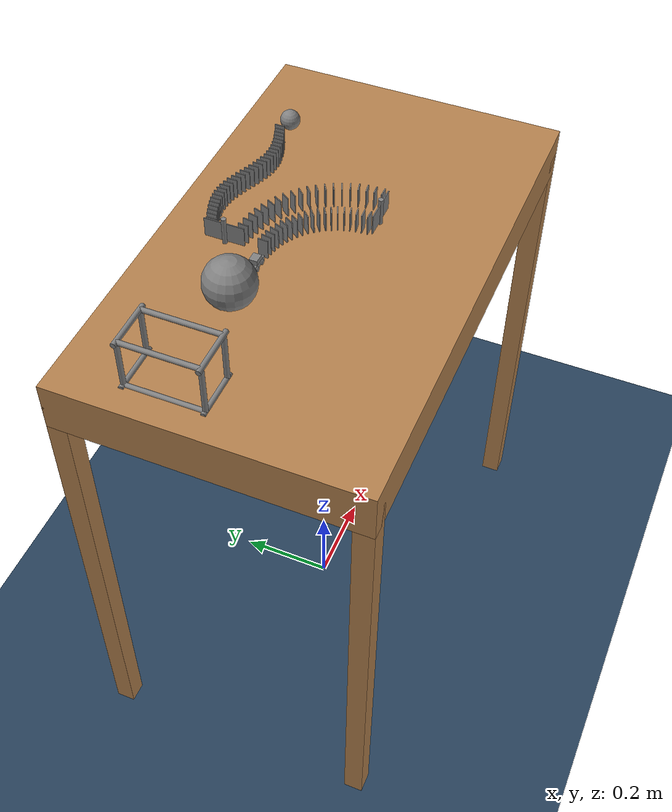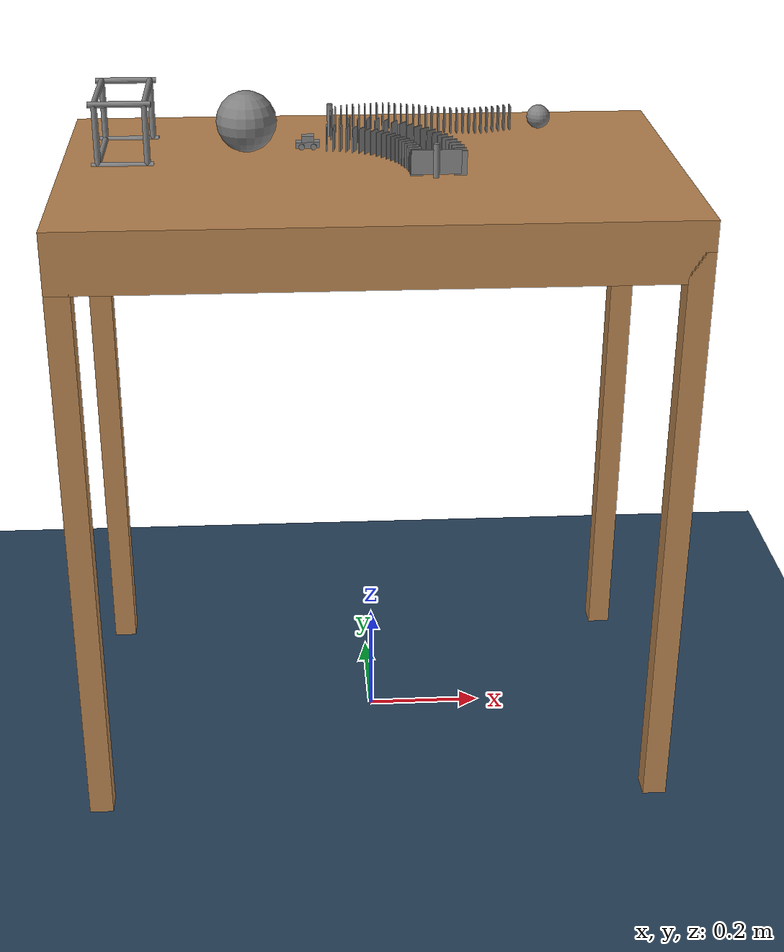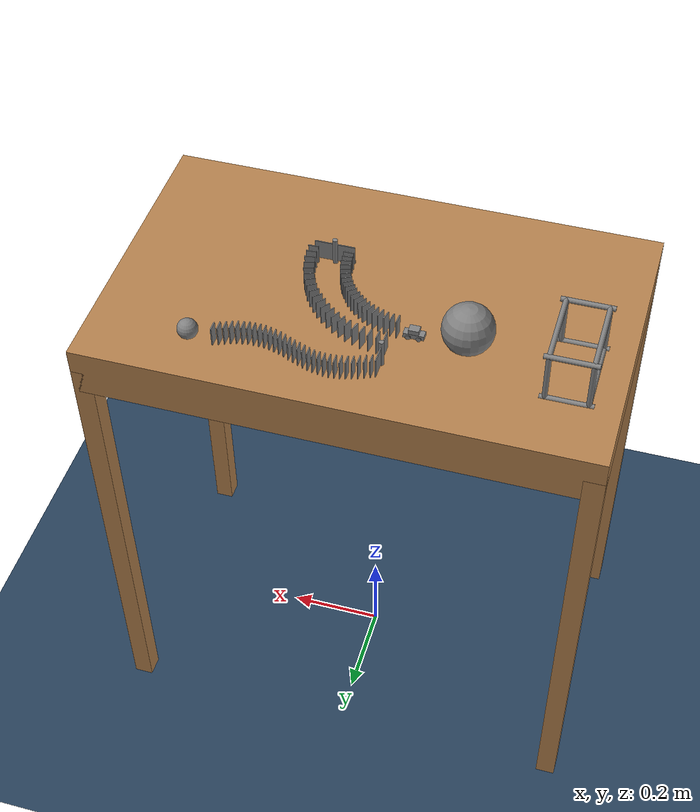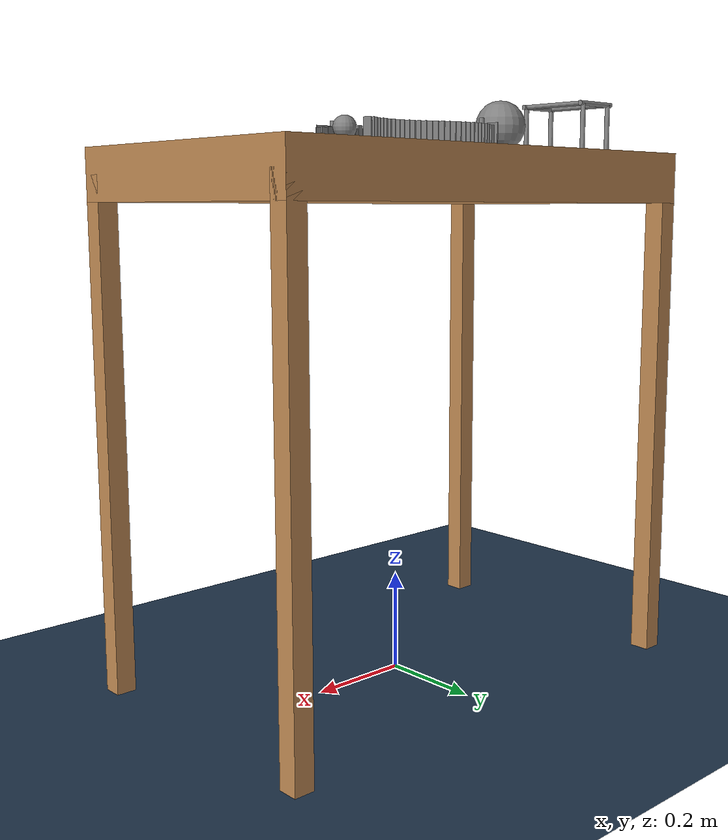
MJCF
<mujoco>
  <compiler meshdir="assets/meshes" texturedir="assets/textures" autolimits="true"/>

  <asset>
    <!-- floor  -->
    <texture  name="grid" type="2d" builtin="checker" width="512" height="512" rgb1=".1 .2 .3" rgb2=".2 .3 .4"/>
    <material name="grid" texture="grid" texrepeat="1 1" texuniform="true" reflectance=".2"/>

        <!-- wood  -->
        <texture  name="wood" type="2d" file="wood.png"/>
        <material name="wood" texture="wood" specular="0" shininess="0.25"/>

  </asset>

  <default>

        <!-- Table::Leg -->
        <default class="table_leg">
          <geom   type="box" size="0.02 0.02 0.5" material="wood"  />
        </default>

        <!-- Domino -->
        <default class="domino">
          <geom   type="box" size="0.001 0.01 0.02"  />
        </default>

        <!-- RevolvingDoor -->
        <default class="revolvingDoor">
          <geom   type="box" size="0.001 0.04 0.02"  />
        </default>

        <!-- ToyCar -->
        <default class="ToyCar_wheel">
          <geom   type="cylinder" size="0.005 0.001" euler="0 90 0"/>
          <joint  axis="0 1 0" />
        </default>

        <!-- GoalPost -->
        <default class="goalPost">
          <geom   type="cylinder"   />
        </default>

        <!-- Ball -->
        <default class="ball">
          <geom   type="sphere"   />
        </default>

  </default>

  <worldbody>

    <!-- floor  -->
    <geom type="plane" size="3 3 .01" material="grid"/>

      <body pos="0 0 0" euler="0 0 0">

		<geom class="table_leg"  pos="-0.48 -0.27999999999999997 0.5"/>
		<geom class="table_leg"  pos="0.48 -0.27999999999999997 0.5"/>
		<geom class="table_leg"  pos="-0.48 0.27999999999999997 0.5"/>
		<geom class="table_leg"  pos="0.48 0.27999999999999997 0.5"/>
        	<!-- Table Top  -->
        	<geom type="box" pos="0 0 1.0" size="0.5 0.3 0.05" material="wood"  />
      </body>

        <body pos="-0.06 0.17 1.075" euler="0 0 0">
          <joint type="hinge" axis="0 0 1"/>
          <geom class="revolvingDoor" />
          <geom type="cylinder" size="0.005 0.03"/>

        </body>

        <body pos="0.1 -0.07 1.075" euler="0 0 90">
          <joint type="hinge" axis="0 0 1"/>
          <geom class="revolvingDoor" />
          <geom type="cylinder" size="0.005 0.03"/>

        </body>

        <body pos="0.3 0.2 1.07" euler="0 0 0">
          <geom class="ball" size="0.02"/>
        </body>

        <body pos="-0.05 0.2 1.07" euler="0 0 0">
          <geom class="domino"/>
        </body>

        <body pos="-0.039655172413793106 0.20429940880422048 1.07" euler="0 0 0">
          <geom class="domino"/>
        </body>

        <body pos="-0.02931034482758621 0.2083977820312053 1.07" euler="0 0 0">
          <geom class="domino"/>
        </body>

        <body pos="-0.018965517241379314 0.21210348430387532 1.07" euler="0 0 0">
          <geom class="domino"/>
        </body>

        <body pos="-0.008620689655172417 0.21524324110255275 1.07" euler="0 0 0">
          <geom class="domino"/>
        </body>

        <body pos="0.0017241379310344793 0.21767024088892048 1.07" euler="0 0 0">
          <geom class="domino"/>
        </body>

        <body pos="0.012068965517241376 0.21927099985038448 1.07" euler="0 0 0">
          <geom class="domino"/>
        </body>

        <body pos="0.02241379310344828 0.2199706682770225 1.07" euler="0 0 0">
          <geom class="domino"/>
        </body>

        <body pos="0.03275862068965517 0.21973653045083053 1.07" euler="0 0 0">
          <geom class="domino"/>
        </body>

        <body pos="0.04310344827586207 0.21857953439633585 1.07" euler="0 0 0">
          <geom class="domino"/>
        </body>

        <body pos="0.05344827586206896 0.21655377996313782 1.07" euler="0 0 0">
          <geom class="domino"/>
        </body>

        <body pos="0.06379310344827585 0.21375398917706848 1.07" euler="0 0 0">
          <geom class="domino"/>
        </body>

        <body pos="0.07413793103448275 0.21031107714354044 1.07" euler="0 0 0">
          <geom class="domino"/>
        </body>

        <body pos="0.08448275862068964 0.20638603060271962 1.07" euler="0 0 0">
          <geom class="domino"/>
        </body>

        <body pos="0.09482758620689656 0.20216238036847883 1.07" euler="0 0 0">
          <geom class="domino"/>
        </body>

        <body pos="0.10517241379310345 0.19783761963152116 1.07" euler="0 0 0">
          <geom class="domino"/>
        </body>

        <body pos="0.11551724137931034 0.19361396939728043 1.07" euler="0 0 0">
          <geom class="domino"/>
        </body>

        <body pos="0.12586206896551722 0.18968892285645958 1.07" euler="0 0 0">
          <geom class="domino"/>
        </body>

        <body pos="0.13620689655172413 0.18624601082293155 1.07" euler="0 0 0">
          <geom class="domino"/>
        </body>

        <body pos="0.146551724137931 0.1834462200368622 1.07" euler="0 0 0">
          <geom class="domino"/>
        </body>

        <body pos="0.1568965517241379 0.18142046560366418 1.07" euler="0 0 0">
          <geom class="domino"/>
        </body>

        <body pos="0.16724137931034483 0.1802634695491695 1.07" euler="0 0 0">
          <geom class="domino"/>
        </body>

        <body pos="0.1775862068965517 0.18002933172297753 1.07" euler="0 0 0">
          <geom class="domino"/>
        </body>

        <body pos="0.1879310344827586 0.18072900014961554 1.07" euler="0 0 0">
          <geom class="domino"/>
        </body>

        <body pos="0.19827586206896552 0.18232975911107954 1.07" euler="0 0 0">
          <geom class="domino"/>
        </body>

        <body pos="0.2086206896551724 0.18475675889744728 1.07" euler="0 0 0">
          <geom class="domino"/>
        </body>

        <body pos="0.2189655172413793 0.1878965156961247 1.07" euler="0 0 0">
          <geom class="domino"/>
        </body>

        <body pos="0.22931034482758622 0.19160221796879473 1.07" euler="0 0 0">
          <geom class="domino"/>
        </body>

        <body pos="0.23965517241379314 0.19570059119577954 1.07" euler="0 0 0">
          <geom class="domino"/>
        </body>

        <body pos="0.25 0.2 1.07" euler="0 0 0">
          <geom class="domino"/>
        </body>

        <body pos="0.14 -0.06 1.07" euler="0 0 -90.0">
          <geom class="domino"/>
        </body>

        <body pos="0.1393834667466256 -0.04430818085443101 1.07" euler="0 0 -85.5">
          <geom class="domino"/>
        </body>

        <body pos="0.13753766811902757 -0.02871310699195382 1.07" euler="0 0 -81.0">
          <geom class="domino"/>
        </body>

        <body pos="0.1344739840795353 -0.013310927228818915 1.07" euler="0 0 -76.5">
          <geom class="domino"/>
        </body>

        <body pos="0.13021130325903071 0.0018033988749894814 1.07" euler="0 0 -72.0">
          <geom class="domino"/>
        </body>

        <body pos="0.12477590650225737 0.016536686473017967 1.07" euler="0 0 -67.5">
          <geom class="domino"/>
        </body>

        <body pos="0.1182013048376736 0.03079809994790937 1.07" euler="0 0 -63.0">
          <geom class="domino"/>
        </body>

        <body pos="0.11052803287081847 0.04449971294318977 1.07" euler="0 0 -58.5">
          <geom class="domino"/>
        </body>

        <body pos="0.10180339887498951 0.05755705045849463 1.07" euler="0 0 -54.00000000000001">
          <geom class="domino"/>
        </body>

        <body pos="0.0920811931200062 0.06988960966603674 1.07" euler="0 0 -49.50000000000001">
          <geom class="domino"/>
        </body>

        <body pos="0.08142135623730953 0.0814213562373095 1.07" euler="0 0 -45.00000000000001">
          <geom class="domino"/>
        </body>

        <body pos="0.06988960966603674 0.0920811931200062 1.07" euler="0 0 -40.5">
          <geom class="domino"/>
        </body>

        <body pos="0.05755705045849463 0.10180339887498951 1.07" euler="0 0 -36.0">
          <geom class="domino"/>
        </body>

        <body pos="0.04449971294318979 0.11052803287081844 1.07" euler="0 0 -31.500000000000007">
          <geom class="domino"/>
        </body>

        <body pos="0.030798099947909385 0.1182013048376736 1.07" euler="0 0 -27.000000000000007">
          <geom class="domino"/>
        </body>

        <body pos="0.01653668647301798 0.12477590650225737 1.07" euler="0 0 -22.500000000000004">
          <geom class="domino"/>
        </body>

        <body pos="0.0018033988749894952 0.13021130325903071 1.07" euler="0 0 -18.000000000000004">
          <geom class="domino"/>
        </body>

        <body pos="-0.013310927228818902 0.1344739840795353 1.07" euler="0 0 -13.500000000000004">
          <geom class="domino"/>
        </body>

        <body pos="-0.028713106991953813 0.13753766811902757 1.07" euler="0 0 -9.000000000000004">
          <geom class="domino"/>
        </body>

        <body pos="-0.044308180854431 0.1393834667466256 1.07" euler="0 0 -4.5000000000000036">
          <geom class="domino"/>
        </body>

        <body pos="0.06999999999999999 -0.06 1.07" euler="0 0 -90.0">
          <geom class="domino"/>
        </body>

        <body pos="0.06953760005996919 -0.04823113564082326 1.07" euler="0 0 -85.5">
          <geom class="domino"/>
        </body>

        <body pos="0.06815325108927066 -0.036534830243965366 1.07" euler="0 0 -81.0">
          <geom class="domino"/>
        </body>

        <body pos="0.06585548805965148 -0.024983195421614188 1.07" euler="0 0 -76.5">
          <geom class="domino"/>
        </body>

        <body pos="0.06265847744427301 -0.013647450843757888 1.07" euler="0 0 -72.0">
          <geom class="domino"/>
        </body>

        <body pos="0.058581929876693015 -0.0025974851452365347 1.07" euler="0 0 -67.5">
          <geom class="domino"/>
        </body>

        <body pos="0.05365097862825517 0.008098574960932026 1.07" euler="0 0 -63.0">
          <geom class="domino"/>
        </body>

        <body pos="0.047896024653113836 0.018374784707392317 1.07" euler="0 0 -58.50000000000001">
          <geom class="domino"/>
        </body>

        <body pos="0.041352549156242105 0.028167787843870973 1.07" euler="0 0 -54.0">
          <geom class="domino"/>
        </body>

        <body pos="0.03406089484000463 0.037417207249527545 1.07" euler="0 0 -49.50000000000001">
          <geom class="domino"/>
        </body>

        <body pos="0.026066017177982126 0.046066017177982116 1.07" euler="0 0 -45.00000000000001">
          <geom class="domino"/>
        </body>

        <body pos="0.01741720724952754 0.054060894840004634 1.07" euler="0 0 -40.50000000000001">
          <geom class="domino"/>
        </body>

        <body pos="0.008167787843870969 0.06135254915624211 1.07" euler="0 0 -36.0">
          <geom class="domino"/>
        </body>

        <body pos="-0.0016252152926076735 0.06789602465311381 1.07" euler="0 0 -31.500000000000007">
          <geom class="domino"/>
        </body>

        <body pos="-0.011901425039067978 0.07365097862825518 1.07" euler="0 0 -27.000000000000007">
          <geom class="domino"/>
        </body>

        <body pos="-0.02259748514523653 0.07858192987669302 1.07" euler="0 0 -22.500000000000004">
          <geom class="domino"/>
        </body>

        <body pos="-0.033647450843757885 0.08265847744427302 1.07" euler="0 0 -18.000000000000004">
          <geom class="domino"/>
        </body>

        <body pos="-0.044983195421614185 0.08585548805965149 1.07" euler="0 0 -13.500000000000004">
          <geom class="domino"/>
        </body>

        <body pos="-0.05653483024396536 0.08815325108927066 1.07" euler="0 0 -9.000000000000004">
          <geom class="domino"/>
        </body>

        <body pos="-0.06823113564082325 0.08953760005996919 1.07" euler="0 0 -4.5000000000000036">
          <geom class="domino"/>
        </body>

          <body pos="-0.1 0.09 1.06" euler="0 0 90">
            <geom   type="box" size="0.008 0.01 0.005" pos="0 0 0.01" />
            <geom   type="box" size="0.008 0.02 0.005" />

          <body>
            <joint class="ToyCar_wheel" />
            <geom class="ToyCar_wheel"  pos="-0.009000000000000001 -0.01 -0.0025"/>
          </body>

          <body>
            <joint class="ToyCar_wheel" />
            <geom class="ToyCar_wheel"  pos="0.009000000000000001 -0.01 -0.0025"/>
          </body>

          <body>
            <joint class="ToyCar_wheel" />
            <geom class="ToyCar_wheel"  pos="-0.009000000000000001 0.01 -0.0025"/>
          </body>

          <body>
            <joint class="ToyCar_wheel" />
            <geom class="ToyCar_wheel"  pos="0.009000000000000001 0.01 -0.0025"/>
          </body>

          </body>

          <body pos="-0.4 0.0 1.05" euler="0 0 0">

            <geom class="goalPost" pos="0.04 0.02 0.05"
                  size="0.005 0.05" euler="0 0 0"/>

            <geom class="goalPost" pos="-0.04 0.02 0.05"
                  size="0.005 0.05" euler="0 0 0"/>

            <geom class="goalPost" pos="0 0.02 0"
                  size="0.005 0.05" euler="0 90 0"/>

            <geom class="goalPost" pos="0 0.02 0.1"
                  size="0.005 0.05" euler="0 90 0"/>

            <geom class="goalPost" pos="0.04 0.16999999999999998 0.05"
                  size="0.005 0.05" euler="0 0 0"/>

            <geom class="goalPost" pos="-0.04 0.16999999999999998 0.05"
                  size="0.005 0.05" euler="0 0 0"/>

            <geom class="goalPost" pos="0 0.16999999999999998 0"
                  size="0.005 0.05" euler="0 90 0"/>

            <geom class="goalPost" pos="0 0.16999999999999998 0.1"
                  size="0.005 0.05" euler="0 90 0"/>

          <geom class="goalPost" pos="0.04 0.095 0.1"
                size="0.005 0.075" euler="90 0 0"/>

          <geom class="goalPost" pos="-0.04 0.095 0"
                size="0.005 0.075" euler="90 0 0"/>

          <geom class="goalPost" pos="-0.04 0.095 0.1"
                size="0.005 0.075" euler="90 0 0"/>

          </body>

        <body pos="-0.2 0.09 1.1" euler="0 0 0">
          <geom class="ball" size="0.05"/>
        </body>

  </worldbody>

  <keyframe>
    <key name="spinning" qpos="0 0 0.02 1 0 0 0" qvel="0 0 0 0 1 200" />
  </keyframe>

</mujoco>
